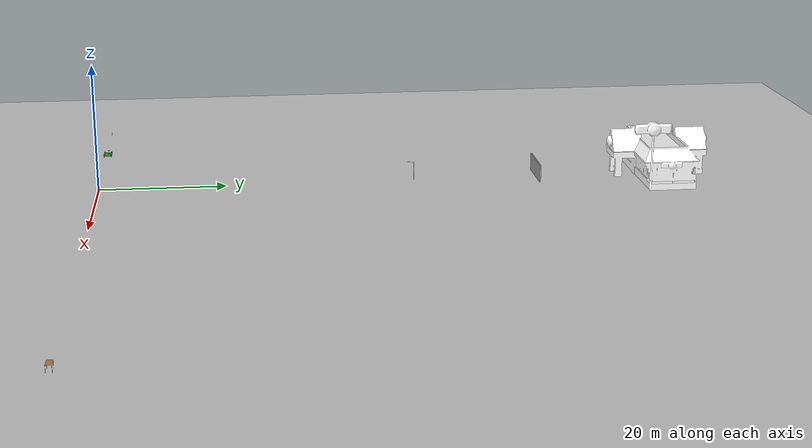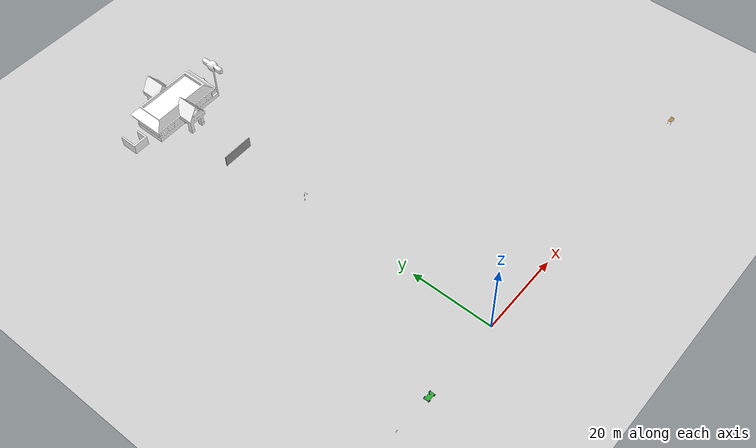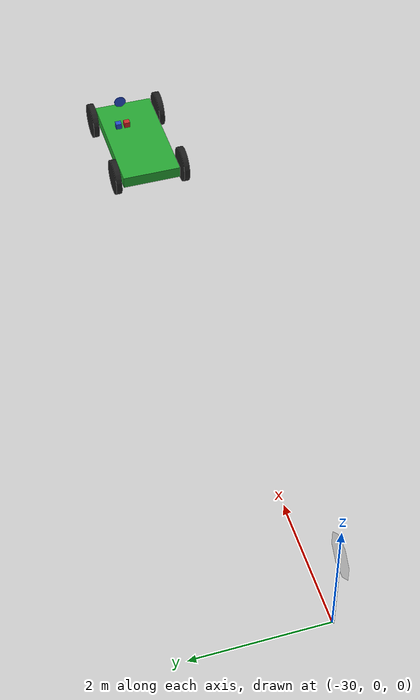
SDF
<sdf version="1.5">
 <world name="default">
  <include><uri>model://sun</uri></include>
  <include><uri>model://ground_plane</uri></include>
  <include><uri>model://table</uri><pose>70 0 0 0 0 0</pose></include>
  <include><uri>model://utility_cart</uri><pose>-20 0 0 0 0 0</pose></include>
  <include><uri>model://stop_sign</uri><pose>-30 0 0 0 0 0</pose></include>
  <include><uri>model://lamp_post</uri><pose>0 50 0 0 0 0</pose></include>
  <include><uri>model://grey_wall</uri><pose>0 70 0 0 0 0</pose></include>
  <include><uri>model://fast_food</uri><pose>0 90 0 0 0 0</pose></include>
 </world>
</sdf>

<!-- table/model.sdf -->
<sdf version="1.5">
  <model name="table">
    <static>true</static>
    <link name="link">
      <collision name="surface">
        <pose>0 0 1.0 0 0 0</pose>
        <geometry>
          <box>
            <size>1.5 0.8 0.03</size>
          </box>
        </geometry>
        <surface>
          <friction>
            <ode>
              <mu>0.6</mu>
              <mu2>0.6</mu2>
            </ode>
          </friction>
        </surface>
      </collision>
      <visual name="visual1">
        <pose>0 0 1.0 0 0 0</pose>
        <geometry>
          <box>
            <size>1.5 0.8 0.03</size>
          </box>
        </geometry>
        <material>
          <script>
            <uri>model://media/materials/scripts/gazebo.material</uri>
            <name>Gazebo/Wood</name>
          </script>
        </material>
      </visual>
      <collision name="front_left_leg">
        <pose>0.68 0.38 0.5 0 0 0</pose>
        <geometry>
          <cylinder>
            <radius>0.02</radius>
            <length>1.0</length>
          </cylinder>
        </geometry>
      </collision>
      <visual name="front_left_leg">
        <pose>0.68 0.38 0.5 0 0 0</pose>
        <geometry>
          <cylinder>
            <radius>0.02</radius>
            <length>1.0</length>
          </cylinder>
        </geometry>
        <material>
          <script>
            <uri>model://media/materials/scripts/gazebo.material</uri>
            <name>Gazebo/Grey</name>
          </script>
        </material>
      </visual>
      <collision name="front_right_leg">
        <pose>0.68 -0.38 0.5 0 0 0</pose>
        <geometry>
          <cylinder>
            <radius>0.02</radius>
            <length>1.0</length>
          </cylinder>
        </geometry>
      </collision>
      <visual name="front_right_leg">
        <pose>0.68 -0.38 0.5 0 0 0</pose>
        <geometry>
          <cylinder>
            <radius>0.02</radius>
            <length>1.0</length>
          </cylinder>
        </geometry>
        <material>
          <script>
            <uri>model://media/materials/scripts/gazebo.material</uri>
            <name>Gazebo/Grey</name>
          </script>
        </material>
      </visual>
      <collision name="back_right_leg">
        <pose>-0.68 -0.38 0.5 0 0 0</pose>
        <geometry>
          <cylinder>
            <radius>0.02</radius>
            <length>1.0</length>
          </cylinder>
        </geometry>
      </collision>
      <visual name="back_right_leg">
        <pose>-0.68 -0.38 0.5 0 0 0</pose>
        <geometry>
          <cylinder>
            <radius>0.02</radius>
            <length>1.0</length>
          </cylinder>
        </geometry>
        <material>
          <script>
            <uri>model://media/materials/scripts/gazebo.material</uri>
            <name>Gazebo/Grey</name>
          </script>
        </material>
      </visual>
      <collision name="back_left_leg">
        <pose>-0.68 0.38 0.5 0 0 0</pose>
        <geometry>
          <cylinder>
            <radius>0.02</radius>
            <length>1.0</length>
          </cylinder>
        </geometry>
      </collision>
      <visual name="back_left_leg">
        <pose>-0.68 0.38 0.5 0 0 0</pose>
        <geometry>
          <cylinder>
            <radius>0.02</radius>
            <length>1.0</length>
          </cylinder>
        </geometry>
        <material>
          <script>
            <uri>model://media/materials/scripts/gazebo.material</uri>
            <name>Gazebo/Grey</name>
          </script>
        </material>
      </visual>
    </link>
  </model>
</sdf>

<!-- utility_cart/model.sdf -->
<sdf version="1.5">
  <model name="utility_cart">
    <link name="chassis">
      <pose>0 0 0.3 0 0 0</pose>
      <collision name="collision">
        <geometry>
          <box>
            <size>2.0 1.0 0.2</size>
          </box>
        </geometry>
      </collision>
      <visual name="visual">
        <geometry>
          <box>
            <size>2.0 1.0 0.2</size>
          </box>
        </geometry>
        <material>
          <script>
            <uri>file://media/materials/scripts/gazebo.material</uri>
            <name>Gazebo/Green</name>
          </script>
        </material>
      </visual>
    </link>
    <link name="front_left_wheel">
      <pose>0.8 0.6 0.3 0 1.5707 1.5707</pose>
      <collision name="collision">
        <geometry>
          <cylinder>
            <radius>0.3</radius>
            <length>0.1</length>
          </cylinder>
        </geometry>
      </collision>
      <visual name="visual">
        <geometry>
          <cylinder>
            <radius>0.3</radius>
            <length>0.1</length>
          </cylinder>
        </geometry>
        <material>
          <script>
            <uri>file://media/materials/scripts/gazebo.material</uri>
            <name>Gazebo/Black</name>
          </script>
        </material>
      </visual>
    </link>
    <link name="front_right_wheel">
      <pose>0.8 -0.6 0.3 0 1.5707 1.5707</pose>
      <collision name="collision">
        <geometry>
          <cylinder>
            <radius>0.3</radius>
            <length>0.1</length>
          </cylinder>
        </geometry>
      </collision>
      <visual name="visual">
        <geometry>
          <cylinder>
            <radius>0.3</radius>
            <length>0.1</length>
          </cylinder>
        </geometry>
        <material>
          <script>
            <uri>file://media/materials/scripts/gazebo.material</uri>
            <name>Gazebo/Black</name>
          </script>
        </material>
      </visual>
    </link>
    <link name="back_right_wheel">
      <pose>-0.8 -0.6 0.3 0 1.5707 1.5707</pose>
      <collision name="collision">
        <geometry>
          <cylinder>
            <radius>0.3</radius>
            <length>0.1</length>
          </cylinder>
        </geometry>
      </collision>
      <visual name="visual">
        <geometry>
          <cylinder>
            <radius>0.3</radius>
            <length>0.1</length>
          </cylinder>
        </geometry>
        <material>
          <script>
            <uri>file://media/materials/scripts/gazebo.material</uri>
            <name>Gazebo/Black</name>
          </script>
        </material>
      </visual>
    </link>
    <link name="back_left_wheel">
      <pose>-0.8 0.6 0.3 0 1.5707 1.5707</pose>
      <collision name="collision">
        <geometry>
          <cylinder>
            <radius>0.3</radius>
            <length>0.1</length>
          </cylinder>
        </geometry>
      </collision>
      <visual name="visual">
        <geometry>
          <cylinder>
            <radius>0.3</radius>
            <length>0.1</length>
          </cylinder>
        </geometry>
        <material>
          <script>
            <uri>file://media/materials/scripts/gazebo.material</uri>
            <name>Gazebo/Black</name>
          </script>
        </material>
      </visual>
    </link>
    <link name="gas_pedal">
      <pose>0.3 0.1 0.5 0 0 0</pose>
      <collision name="collision">
        <geometry>
          <box>
            <size>0.1 0.1 0.1</size>
          </box>
        </geometry>
      </collision>
      <visual name="visual">
        <geometry>
          <box>
            <size>0.1 0.1 0.1</size>
          </box>
        </geometry>
        <material>
          <script>
            <uri>file://media/materials/scripts/gazebo.material</uri>
            <name>Gazebo/Red</name>
          </script>
        </material>
      </visual>
    </link>
    <link name="brake_pedal">
      <pose>0.3 0.25 0.5 0 0 0</pose>
      <collision name="collision">
        <geometry>
          <box>
            <size>0.1 0.1 0.1</size>
          </box>
        </geometry>
      </collision>
      <visual name="visual">
        <geometry>
          <box>
            <size>0.1 0.1 0.1</size>
          </box>
        </geometry>
        <material>
          <script>
            <uri>file://media/materials/scripts/gazebo.material</uri>
            <name>Gazebo/Blue</name>
          </script>
        </material>
      </visual>
    </link>
    <link name="steering_wheel">
      <pose>0.3 0.2 1.0 0 1.5707 0</pose>
      <collision name="collision">
        <geometry>
          <cylinder>
            <radius>0.1</radius>
            <length>0.01</length>
          </cylinder>
        </geometry>
      </collision>
      <visual name="visual">
        <geometry>
          <cylinder>
            <radius>0.1</radius>
            <length>0.01</length>
          </cylinder>
        </geometry>
        <material>
          <script>
            <uri>file://media/materials/scripts/gazebo.material</uri>
            <name>Gazebo/Blue</name>
          </script>
        </material>
      </visual>
    </link>
    <joint type="prismatic" name="gas_joint">
      <parent>chassis</parent>
      <child>gas_pedal</child>
      <axis>
        <xyz>1 0 0</xyz>
        <limit>
          <lower>0</lower>
          <upper>0.2</upper>
        </limit>
        <use_parent_model_frame>true</use_parent_model_frame>
      </axis>
    </joint>
    <joint type="prismatic" name="brake_joint">
      <parent>chassis</parent>
      <child>brake_pedal</child>
      <axis>
        <xyz>1 0 0</xyz>
        <limit>
          <lower>0</lower>
          <upper>0.2</upper>
        </limit>
        <use_parent_model_frame>true</use_parent_model_frame>
      </axis>
    </joint>
    <joint type="revolute" name="steering_joint">
      <parent>chassis</parent>
      <child>steering_wheel</child>
      <axis>
        <xyz>1 0 0</xyz>
        <limit>
          <lower>-7.853</lower>
          <upper>7.853</upper>
        </limit>
        <use_parent_model_frame>true</use_parent_model_frame>
      </axis>
    </joint>
    <joint type="revolute2" name="front_left_joint">
      <parent>chassis</parent>
      <child>front_left_wheel</child>
      <axis>
        <xyz>0 0 1</xyz>
        <limit>
          <lower>0</lower>
          <upper>0</upper>
        </limit>
        <use_parent_model_frame>true</use_parent_model_frame>
      </axis>
      <axis2>
        <xyz>0 1 0</xyz>
        <use_parent_model_frame>true</use_parent_model_frame>
      </axis2>
      <physics>
        <ode>
          <limit>
            <cfm>0.0</cfm>
            <erp>0.9</erp>
          </limit>
        </ode>
      </physics>
    </joint>
    <joint type="revolute2" name="front_right_joint">
      <parent>chassis</parent>
      <child>front_right_wheel</child>
      <axis>
        <xyz>0 0 1</xyz>
        <limit>
          <lower>0</lower>
          <upper>0</upper>
        </limit>
        <use_parent_model_frame>true</use_parent_model_frame>
      </axis>
      <axis2>
        <xyz>0 1 0</xyz>
        <use_parent_model_frame>true</use_parent_model_frame>
      </axis2>
      <physics>
        <ode>
          <limit>
            <cfm>0.0</cfm>
            <erp>0.9</erp>
          </limit>
        </ode>
      </physics>
    </joint>
    <joint type="revolute2" name="back_right_joint">
      <parent>chassis</parent>
      <child>back_right_wheel</child>
      <axis>
        <xyz>0 0 1</xyz>
        <limit>
          <lower>0</lower>
          <upper>0</upper>
        </limit>
        <use_parent_model_frame>true</use_parent_model_frame>
      </axis>
      <axis2>
        <xyz>0 1 0</xyz>
        <use_parent_model_frame>true</use_parent_model_frame>
      </axis2>
      <physics>
        <ode>
          <limit>
            <cfm>0.0</cfm>
            <erp>0.9</erp>
          </limit>
        </ode>
      </physics>
    </joint>
    <joint type="revolute2" name="back_left_joint">
      <parent>chassis</parent>
      <child>back_left_wheel</child>
      <axis>
        <xyz>0 0 1</xyz>
        <limit>
          <lower>0</lower>
          <upper>0</upper>
        </limit>
        <use_parent_model_frame>true</use_parent_model_frame>
      </axis>
      <axis2>
        <xyz>0 1 0</xyz>
        <use_parent_model_frame>true</use_parent_model_frame>
      </axis2>
      <physics>
        <ode>
          <limit>
            <cfm>0.0</cfm>
            <erp>0.9</erp>
          </limit>
        </ode>
      </physics>
    </joint>
    <plugin filename="libVehiclePlugin.so" name="vehicle">
      <!-- Joints for each wheel -->
      <front_left>front_left_joint</front_left>
      <front_right>front_right_joint</front_right>
      <back_left>back_left_joint</back_left>
      <back_right>back_right_joint</back_right>
      <!-- Joint which controls the gas -->
      <gas>gas_joint</gas>
      <!-- Joint which controls the gas -->
      <brake>brake_joint</brake>
      <!-- Joint which controls the steering -->
      <steering>steering_joint</steering>
      <!-- Power is multiplied by "gas" to determine force applied to wheels -->
      <front_power>10</front_power>
      <rear_power>10</rear_power>
      <!-- The angle range the front tires can turn for steering, in radians -->
      <tire_angle_range>0.5</tire_angle_range>
      <!-- Maximum speed for the car in meters/second -->
      <max_speed>10</max_speed>
      <!-- Factor for the down-force applied as the car travels faster -->
      <!-- A larger number increases the down force -->
      <aero_load>0.1</aero_load>
    </plugin>
  </model>
</sdf>

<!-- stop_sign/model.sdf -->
<sdf version="1.5">
  <model name="Stop Sign">
    <link name="link">
      <collision name="collision">
        <geometry>
          <mesh>
            <uri>model://stop_sign/meshes/stop_sign.dae</uri>
          </mesh>
        </geometry>
      </collision>
      <visual name="visual">
        <geometry>
          <mesh>
            <uri>model://stop_sign/meshes/stop_sign.dae</uri>
          </mesh>
        </geometry>
        <material>
          <script>
            <uri>model://stop_sign/materials/scripts</uri>
            <uri>model://stop_sign/materials/textures</uri>
            <name>StopSign/Diffuse</name>
          </script>
        </material>
      </visual>
    </link>
  </model>
</sdf>

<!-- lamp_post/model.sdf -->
<sdf version="1.5">
  <model name="Lamp Post">
    <static>true</static>
    <link name="link">
      <collision name="collision">
        <geometry>
          <mesh>
            <uri>model://lamp_post/meshes/lamp_post.dae</uri>
        </mesh>
      </geometry>
    </collision>
      <visual name="visual">
        <geometry>
          <mesh>
            <uri>model://lamp_post/meshes/lamp_post.dae</uri>
        </mesh>
      </geometry>
    </visual>
  </link>
</model>
</sdf>

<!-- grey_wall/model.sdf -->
<sdf version="1.5">
  <model name="grey_wall">
    <static>true</static>
    <link name="link">
      <pose>0 0 1.4 0 0 0</pose>
      <collision name="collision">
        <geometry>
          <box>
            <size>7.5 0.2 2.8</size>
          </box>
        </geometry>
      </collision>
      <visual name="visual">
        <cast_shadows>false</cast_shadows>
        <geometry>
          <box>
            <size>7.5 0.2 2.8</size>
          </box>
        </geometry>
        <material>
          <script>
            <uri>model://grey_wall/materials/scripts</uri>
            <uri>model://grey_wall/materials/textures</uri>
            <name>vrc/grey_wall</name>
          </script>
        </material>
      </visual>
    </link>
  </model>
</sdf>

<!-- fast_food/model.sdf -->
<sdf version="1.5">
  <model name="Fast Food">
    <static>true</static>
    <link name="link">
      <pose>0 0 3.15931296 0 0 0</pose>
      <collision name="collision">
        <geometry>
          <mesh>
            <scale>3 3 2</scale>
            <uri>model://fast_food/meshes/fast_food.dae</uri>
          </mesh>
        </geometry>
      </collision>
      <visual name="visual">
        <geometry>
          <mesh>
            <scale>3 3 2</scale>
            <uri>model://fast_food/meshes/fast_food.dae</uri>
          </mesh>
        </geometry>
        <material>
          <script>
            <uri>model://fast_food/materials/scripts</uri>
            <uri>model://fast_food/materials/textures</uri>
            <name>FastFood/Diffuse</name>
          </script>
          <shader type="normal_map_tangent_space">
            <normal_map>FastFood_Normal.png</normal_map>
          </shader>
        </material>
      </visual>
    </link>
  </model>
</sdf>
